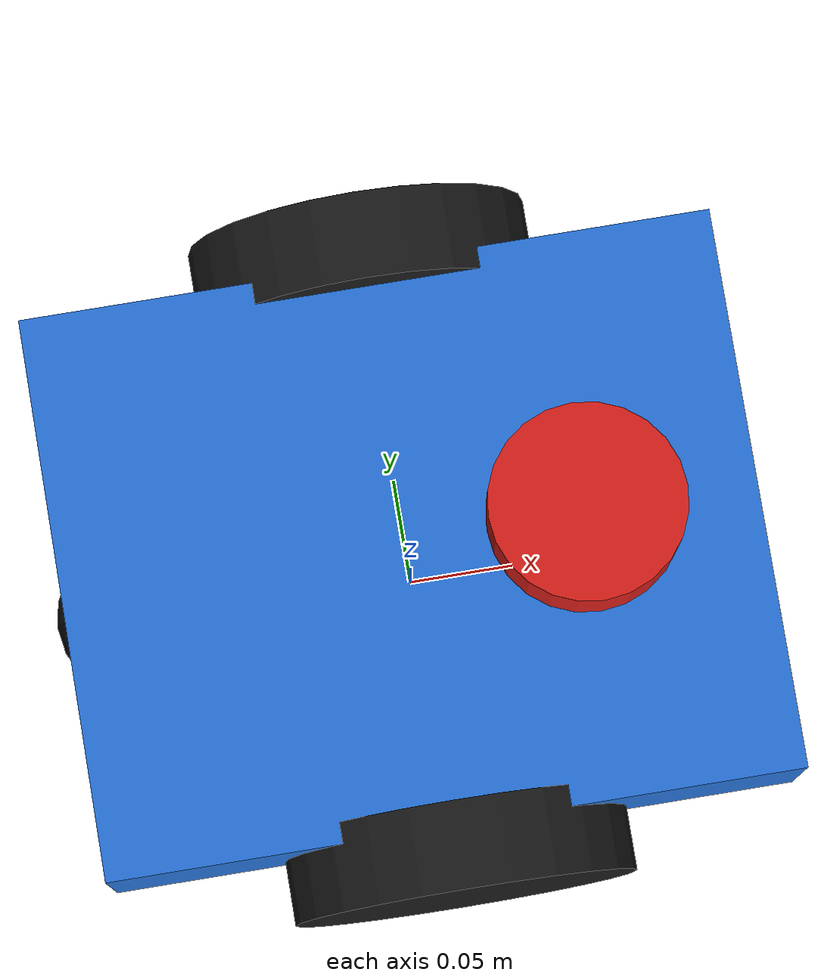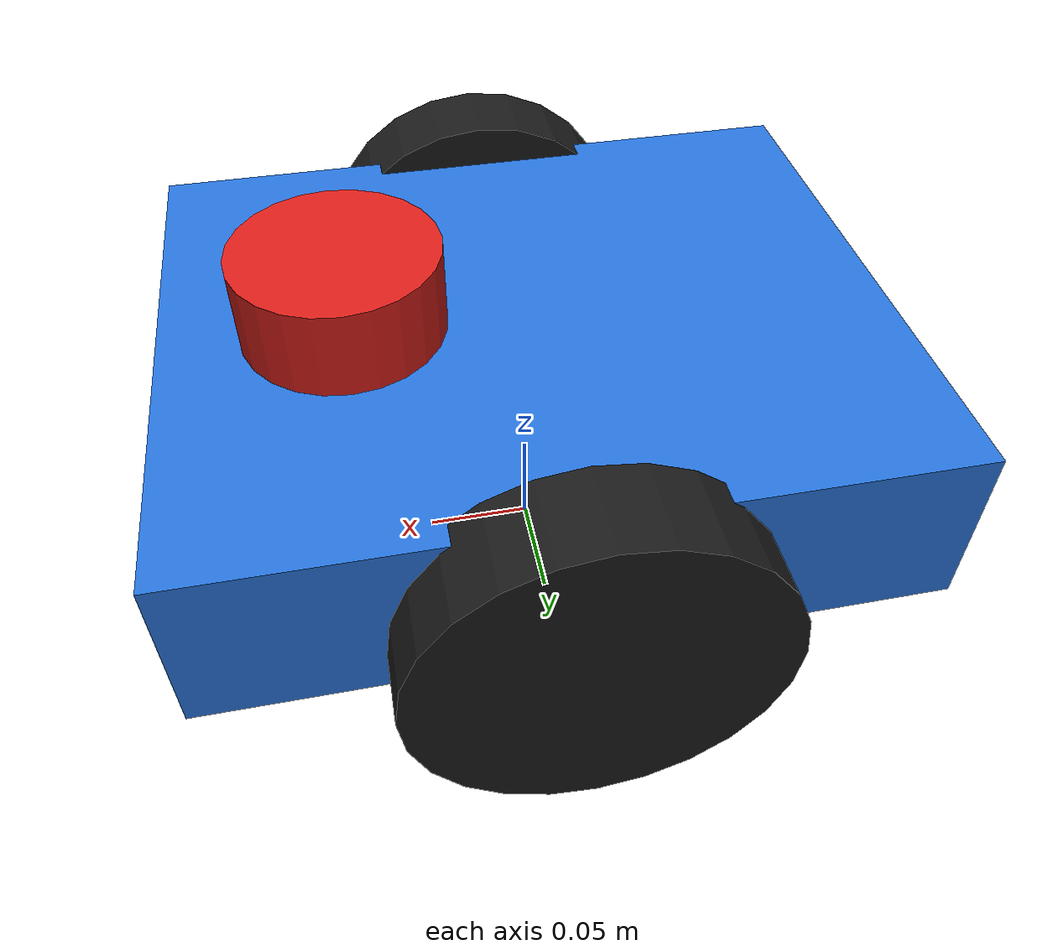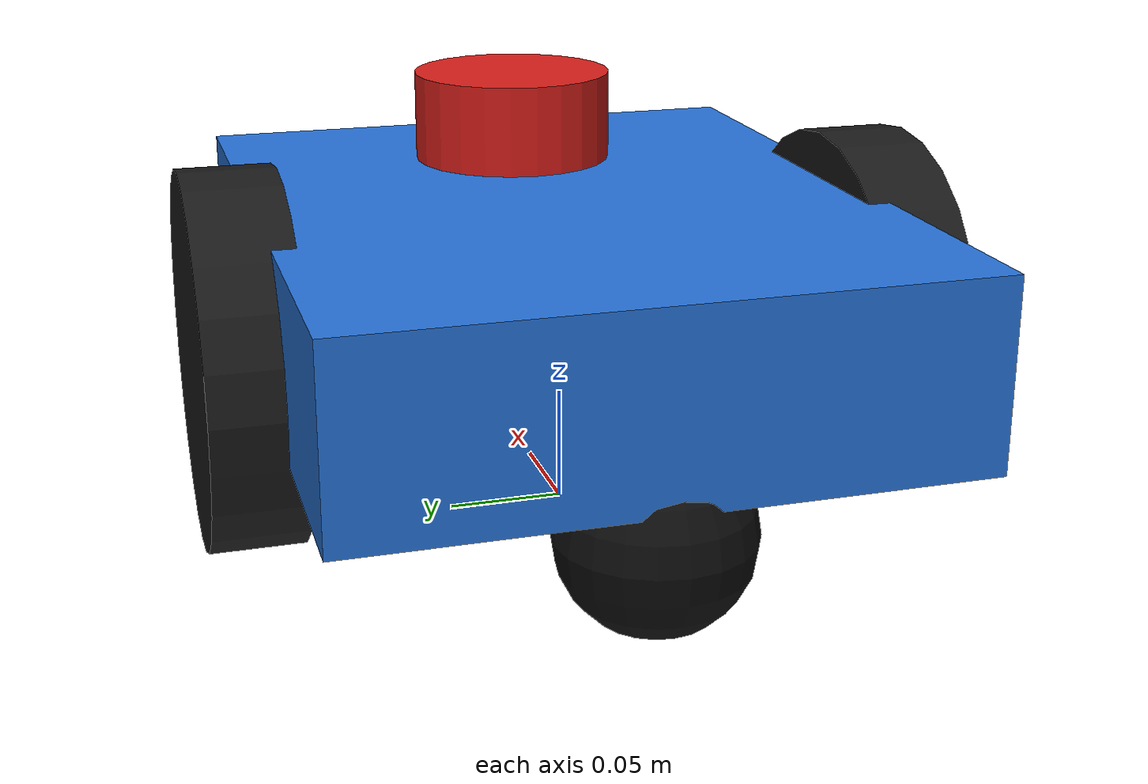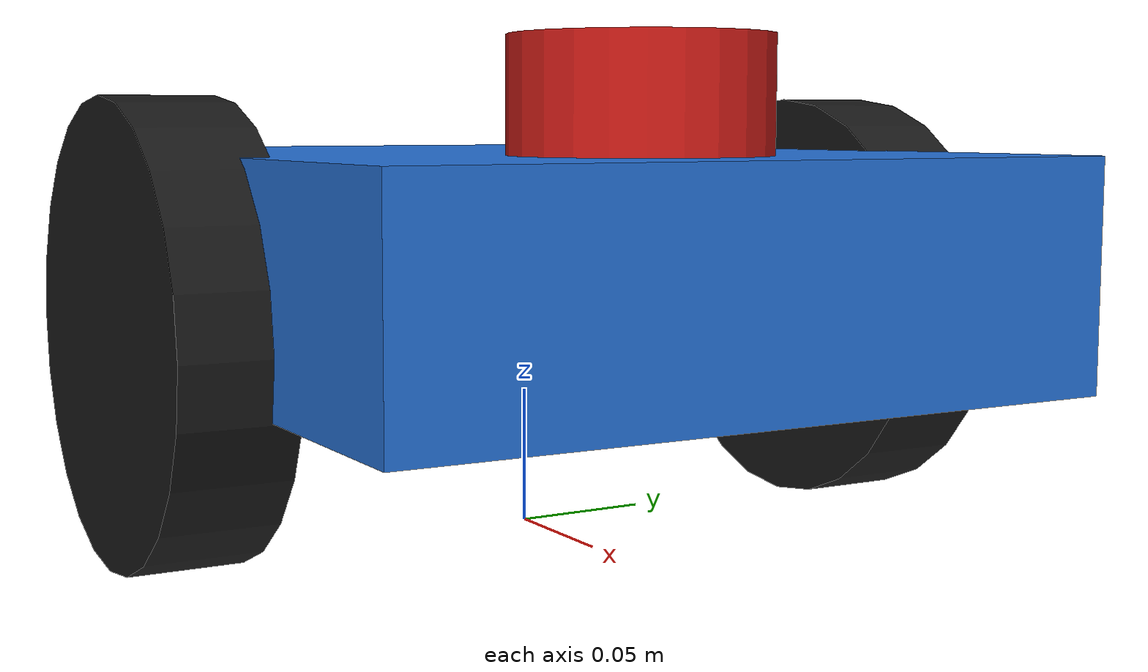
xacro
<?xml version="1.0"?>
<robot name="maze_robot" xmlns:xacro="http://www.ros.org/wiki/xacro">
  <xacro:include filename="$(find task1_robot_description)/urdf/parts/params.xacro"/>
  <xacro:include filename="$(find task1_robot_description)/urdf/parts/inertial.xacro"/>
  <xacro:include filename="$(find task1_robot_description)/urdf/parts/chassis.xacro"/>
  <xacro:include filename="$(find task1_robot_description)/urdf/parts/wheel.xacro"/>
  <xacro:include filename="$(find task1_robot_description)/urdf/parts/lidar.xacro"/>
  <xacro:include filename="$(find task1_robot_description)/urdf/parts/gazebo.xacro"/>

  <xacro:chassis/>
  <xacro:wheel side="left" mirror="1"/>
  <xacro:wheel side="right" mirror="-1"/>
  <xacro:lidar/>
  <xacro:gazebo_ros/>
</robot>

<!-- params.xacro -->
<robot xmlns:xacro="http://www.ros.org/wiki/xacro">
  <xacro:property name="base_mass" value="1.2"/>
  <xacro:property name="base_x" value="0.32"/>
  <xacro:property name="base_y" value="0.26"/>
  <xacro:property name="base_z" value="0.08"/>
  <xacro:property name="base_height" value="0.10"/>

  <xacro:property name="wheel_radius" value="0.08"/>
  <xacro:property name="wheel_width" value="0.04"/>
  <xacro:property name="wheel_separation" value="0.28"/>
  <xacro:property name="wheel_mass" value="0.20"/>

  <xacro:property name="caster_radius" value="0.04"/>
  <xacro:property name="caster_mass" value="0.08"/>
  <xacro:property name="lidar_radius" value="0.045"/>
  <xacro:property name="lidar_height" value="0.04"/>
  <xacro:property name="lidar_mass" value="0.05"/>
</robot>

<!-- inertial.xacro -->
<robot xmlns:xacro="http://www.ros.org/wiki/xacro">
  <xacro:macro name="box_inertia" params="m x y z">
    <inertial>
      <mass value="${m}"/>
      <inertia ixx="${m*(y*y+z*z)/12}" ixy="0" ixz="0"
               iyy="${m*(x*x+z*z)/12}" iyz="0"
               izz="${m*(x*x+y*y)/12}"/>
    </inertial>
  </xacro:macro>

  <xacro:macro name="wheel_inertia" params="m r l">
    <inertial>
      <mass value="${m}"/>
      <inertia ixx="${m*(3*r*r+l*l)/12}" ixy="0" ixz="0"
               iyy="${m*r*r/2}" iyz="0"
               izz="${m*(3*r*r+l*l)/12}"/>
    </inertial>
  </xacro:macro>

  <xacro:macro name="sphere_inertia" params="m r">
    <inertial>
      <mass value="${m}"/>
      <inertia ixx="${2*m*r*r/5}" ixy="0" ixz="0"
               iyy="${2*m*r*r/5}" iyz="0"
               izz="${2*m*r*r/5}"/>
    </inertial>
  </xacro:macro>

  <xacro:macro name="lidar_inertia" params="m r l">
    <inertial>
      <mass value="${m}"/>
      <inertia ixx="${m*(3*r*r+l*l)/12}" ixy="0" ixz="0"
               iyy="${m*(3*r*r+l*l)/12}" iyz="0"
               izz="${m*r*r/2}"/>
    </inertial>
  </xacro:macro>
</robot>

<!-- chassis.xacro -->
<robot xmlns:xacro="http://www.ros.org/wiki/xacro">
  <!-- 根坐标位于地面，base_link 对应车体中心。 -->
  <xacro:macro name="chassis">
    <link name="base_footprint"/>
    <joint name="base_joint" type="fixed">
      <parent link="base_footprint"/>
      <child link="base_link"/>
      <origin xyz="0 0 ${base_height}" rpy="0 0 0"/>
    </joint>

    <link name="base_link">
      <xacro:box_inertia m="${base_mass}" x="${base_x}" y="${base_y}" z="${base_z}"/>
      <visual>
        <geometry>
          <box size="${base_x} ${base_y} ${base_z}"/>
        </geometry>
        <material name="blue">
          <color rgba="0.15 0.45 0.85 1"/>
        </material>
      </visual>
      <collision>
        <geometry>
          <box size="${base_x} ${base_y} ${base_z}"/>
        </geometry>
      </collision>
    </link>
  </xacro:macro>
</robot>

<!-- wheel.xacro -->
<robot xmlns:xacro="http://www.ros.org/wiki/xacro">
  <!-- mirror=1 为左轮，mirror=-1 为右轮。 -->
  <xacro:macro name="wheel" params="side mirror">
    <link name="${side}_wheel_link">
      <xacro:wheel_inertia m="${wheel_mass}" r="${wheel_radius}" l="${wheel_width}"/>
      <visual>
        <origin xyz="0 0 0" rpy="1.5707963 0 0"/>
        <geometry>
          <cylinder radius="${wheel_radius}" length="${wheel_width}"/>
        </geometry>
        <material name="dark">
          <color rgba="0.1 0.1 0.1 1"/>
        </material>
      </visual>
      <collision>
        <origin xyz="0 0 0" rpy="1.5707963 0 0"/>
        <geometry>
          <cylinder radius="${wheel_radius}" length="${wheel_width}"/>
        </geometry>
      </collision>
    </link>

    <joint name="${side}_wheel_joint" type="continuous">
      <parent link="base_link"/>
      <child link="${side}_wheel_link"/>
      <origin xyz="0 ${mirror*wheel_separation/2} ${wheel_radius-base_height}" rpy="0 0 0"/>
      <axis xyz="0 1 0"/>
      <limit effort="10" velocity="20"/>
    </joint>
  </xacro:macro>
</robot>

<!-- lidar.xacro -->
<robot xmlns:xacro="http://www.ros.org/wiki/xacro">
  <xacro:macro name="lidar">
    <link name="caster_link">
      <xacro:sphere_inertia m="${caster_mass}" r="${caster_radius}"/>
      <visual>
        <geometry>
          <sphere radius="${caster_radius}"/>
        </geometry>
        <material name="black">
          <color rgba="0.05 0.05 0.05 1"/>
        </material>
      </visual>
      <collision>
        <geometry>
          <sphere radius="${caster_radius}"/>
        </geometry>
      </collision>
    </link>
    <joint name="caster_joint" type="fixed">
      <parent link="base_link"/>
      <child link="caster_link"/>
      <origin xyz="-0.13 0 ${caster_radius-base_height}" rpy="0 0 0"/>
    </joint>

    <link name="lidar_link">
      <xacro:lidar_inertia m="${lidar_mass}" r="${lidar_radius}" l="${lidar_height}"/>
      <visual>
        <geometry>
          <cylinder radius="${lidar_radius}" length="${lidar_height}"/>
        </geometry>
        <material name="red">
          <color rgba="0.85 0.12 0.10 1"/>
        </material>
      </visual>
      <collision>
        <geometry>
          <cylinder radius="${lidar_radius}" length="${lidar_height}"/>
        </geometry>
      </collision>
    </link>
    <joint name="lidar_joint" type="fixed">
      <parent link="base_link"/>
      <child link="lidar_link"/>
      <origin xyz="0.08 0 0.06" rpy="0 0 0"/>
    </joint>

    <gazebo reference="lidar_link">
      <sensor name="lidar" type="gpu_lidar">
        <always_on>true</always_on>
        <update_rate>10</update_rate>
        <visualize>true</visualize>
        <topic>/scan</topic>
        <gz_frame_id>lidar_link</gz_frame_id>
        <lidar>
          <scan>
            <horizontal>
              <samples>360</samples>
              <resolution>1</resolution>
              <min_angle>-3.14159265</min_angle>
              <max_angle>3.14159265</max_angle>
            </horizontal>
          </scan>
          <range>
            <min>0.10</min>
            <max>8.0</max>
            <resolution>0.01</resolution>
          </range>
        </lidar>
      </sensor>
    </gazebo>
  </xacro:macro>
</robot>
